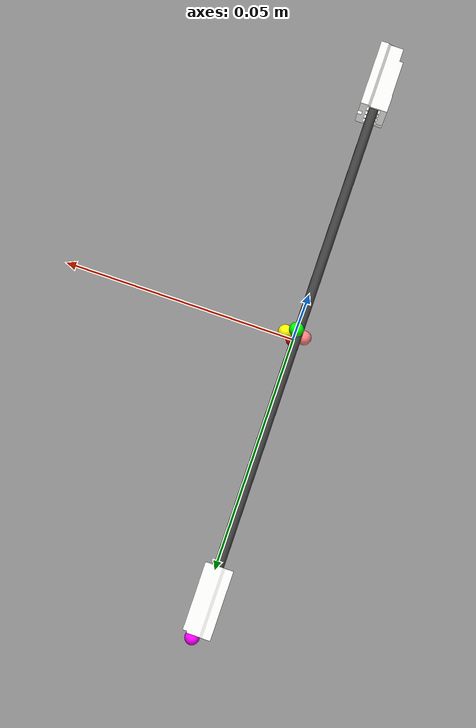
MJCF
<mujoco model="molex_female_solid">

  <compiler angle="radian" inertiagrouprange="0 0" autolimits="true" inertiafromgeom="true" exactmeshinertia="true"/>

  <option impratio="20" cone="elliptic" density="1.2" viscosity="0.00002" solver="Newton" integrator="implicitfast" sdf_iterations="10" sdf_initpoints="20">
    <flag multiccd="disable"/>
  </option>

  <size nconmax="5000" njmax="5000"/>

  <visual>
    <map znear="0.001" />
  </visual>

  <extension>
    <plugin plugin="mujoco.elasticity.cable" />
  </extension>

  <asset>
    <mesh name="female_molex" file="meshes/small_female_4p_molex.stl"/>
    <texture file="../textures/steel-scratched.png" type="cube" name="steel-metal"/>
    <material name="smetal" reflectance="1.0" shininess="1.0" specular="1.0" texrepeat="1 1" texture="steel-metal" texuniform="true"/>
  </asset>

  <default>
    <default class="cable">
      <geom solimp="0.998 0.995 0.001" solref="0.001 1" density="5000" friction="1 0.3 0.2" group="0" condim="4"/>
    </default>

    <default class="visual">
      <geom type="mesh" contype="0" conaffinity="0" density="0" group="1" mass="0"/>
      <site group="1"/>
    </default>
  </default>

  <worldbody>
    <body>
      <body name="object">
        <body name="cable" pos="0.001 0 0.0065" euler="1.57078 0 1.57078">
          <geom name="connector_0_vis" type="mesh" mesh="female_molex" rgba=".96 .96 .95 1" pos="0 0.001 0.063" class="visual"/>
          <geom name="connector_0_col" type="box" size="0.006 0.003 0.007" rgba=".6 .96 .5 0.0" pos="0 0.0014 0.056" class="cable"/>
          <geom name="connector_0_electrode_vis" type="box" rgba="0.7 0.7 0.8 1" size="0.005 0.001 0.001" pos="0 0.002 0.059" class="visual" material="smetal"/>

          <geom name="cable_col" type="box" size="0.005 0.001 0.05" rgba="0.05 0.05 0.75 0.0" pos="0 0.0015 0" class="cable"/>
          <geom name="cable_0_vis" type="cylinder" size="0.001 0.05" rgba="0.25 0.25 0.25 1" pos="0.0013 0.0015 0" class="visual"/>
          <geom name="cable_1_vis" type="cylinder" size="0.001 0.05" rgba="0.25 0.25 0.25 1" pos="0.00375 0.0015 0" class="visual"/>
          <geom name="cable_2_vis" type="cylinder" size="0.001 0.05" rgba="0.25 0.25 0.25 1" pos="-0.0013 0.0015 0" class="visual"/>
          <geom name="cable_3_vis" type="cylinder" size="0.001 0.05" rgba="0.25 0.25 0.25 1" pos="-0.00375 0.0015 0" class="visual"/>

          <geom name="connector_1" type="mesh" mesh="female_molex" rgba=".96 .96 .95 1" euler="0 3.14159 3.14159" pos="0 0.002 -0.063" class="visual"/>
          <geom name="connector_1_col" type="box" size="0.006 0.003 0.007" rgba=".6 .96 .5 0.0" pos="0 0.0017 -0.056" class="cable"/>
          <geom name="connector_1_electrode" type="box" rgba="0.7 0.7 0.8 1" size="0.005 0.001 0.001" pos="0 0.001 -0.059" material="smetal" class="visual"/>
        </body>
        <site rgba="0 1 1 1" size="0.0015" pos="0 -0.0638 0.006" name="connector_0_site"/>
        <site rgba="1 0 1 1" size="0.0015" pos="0 0.0638 0.006" name="connector_1_site"/>

        <site rgba="1 0.5 0.5 1" size="0.0015" pos="-0.002 0 0.0065" name="upside_site"/>
        <site rgba="1 1 0 1" size="0.0015" pos="0.002 0 0.0065" name="downside_site"/>
      </body>
      <site rgba="1 0 0 1" size="0.0015" pos="0 0 0" name="bottom_site"/>
      <site rgba="0 1 0 1" size="0.0015" pos="0 0 0.013" name="top_site"/>
      <site rgba="0 0 1 1" size="0.0015" pos="0 -0.0638 0" name="horizontal_radius_site"/>

    </body>
  </worldbody>
</mujoco>
